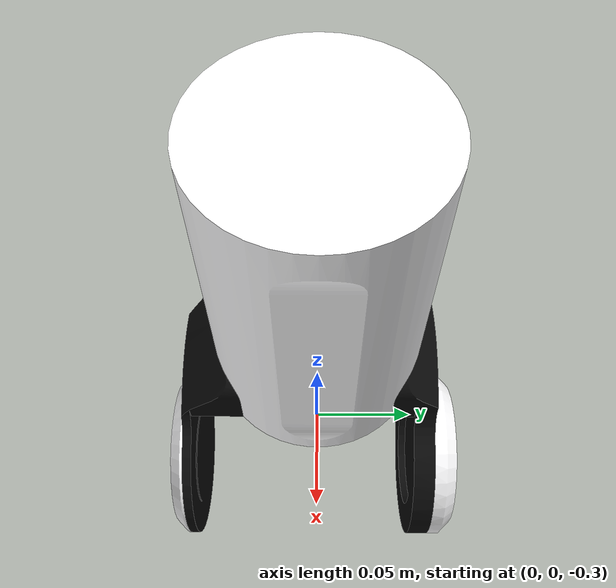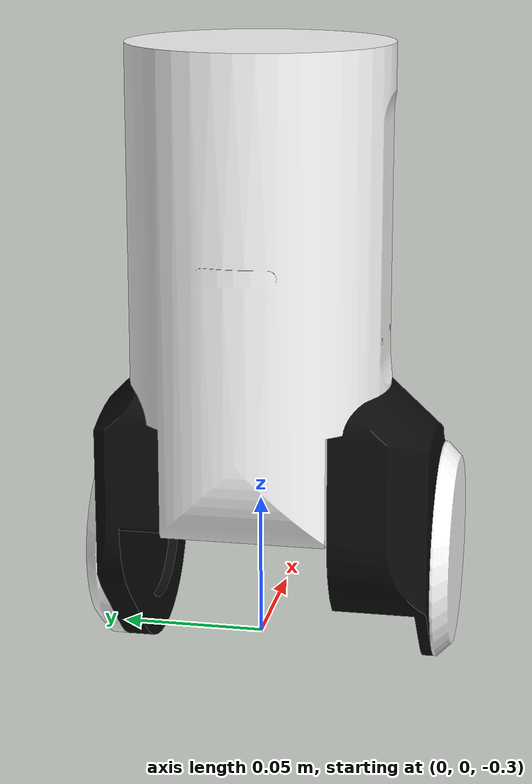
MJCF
<mujoco model="LINK_16">
  <default>
    <default class="visual">
      <geom group="2" type="mesh" contype="0" conaffinity="0"/>
    </default>
    <default class="collision">
      <geom group="3" type="mesh"/>
    </default>
  </default>
  <asset>
    <material name="10,10,10" specular="0.039216" shininess="1.0" rgba="0.039216 0.039216 0.039216 1.000000"/>
    <material name="254,254,255" specular="0.9973853333333333" shininess="1.0" rgba="0.996078 0.996078 1.000000 1.000000"/>
    <mesh file="LINK_16_0.obj"/>
    <mesh file="LINK_16_1.obj"/>
    <mesh file="LINK_16_collision_0.obj"/>
    <mesh file="LINK_16_collision_1.obj"/>
    <mesh file="LINK_16_collision_2.obj"/>
    <mesh file="LINK_16_collision_3.obj"/>
    <mesh file="LINK_16_collision_4.obj"/>
    <mesh file="LINK_16_collision_5.obj"/>
    <mesh file="LINK_16_collision_6.obj"/>
    <mesh file="LINK_16_collision_7.obj"/>
    <mesh file="LINK_16_collision_8.obj"/>
    <mesh file="LINK_16_collision_9.obj"/>
    <mesh file="LINK_16_collision_10.obj"/>
    <mesh file="LINK_16_collision_11.obj"/>
  </asset>
  <worldbody>
    <body name="LINK_16">
      <geom mesh="LINK_16_0" material="254,254,255" class="visual"/>
      <geom mesh="LINK_16_1" material="10,10,10" class="visual"/>
      <geom mesh="LINK_16_collision_0" rgba="0.4823724073368798 0.5022872456375693 0.46069492966261627 1" class="collision"/>
      <geom mesh="LINK_16_collision_1" rgba="0.010220428600252185 0.7006967622288988 0.7126434004492069 1" class="collision"/>
      <geom mesh="LINK_16_collision_2" rgba="0.010642875781216254 0.9898155668594812 0.8274250712242227 1" class="collision"/>
      <geom mesh="LINK_16_collision_3" rgba="0.976107034793406 0.17165513480212302 0.18039752609966897 1" class="collision"/>
      <geom mesh="LINK_16_collision_4" rgba="0.6302800116865647 0.8176078572321391 0.24508485519100964 1" class="collision"/>
      <geom mesh="LINK_16_collision_5" rgba="0.00020072595832421047 0.18359482219663215 0.8784688530056931 1" class="collision"/>
      <geom mesh="LINK_16_collision_6" rgba="0.4215172662563974 0.5171342002098795 0.9781532496574273 1" class="collision"/>
      <geom mesh="LINK_16_collision_7" rgba="0.5713962200269276 0.05746284489107889 0.2269080098704368 1" class="collision"/>
      <geom mesh="LINK_16_collision_8" rgba="0.23250558808429667 0.3299825543824415 0.799821397818602 1" class="collision"/>
      <geom mesh="LINK_16_collision_9" rgba="0.27569763432888494 0.27645903190753585 0.16905815258359258 1" class="collision"/>
      <geom mesh="LINK_16_collision_10" rgba="0.8848099006632817 0.5295559834036317 0.25923650928639785 1" class="collision"/>
      <geom mesh="LINK_16_collision_11" rgba="0.6916384739739914 0.07289875778844601 0.6943886213488413 1" class="collision"/>
    </body>
  </worldbody>
</mujoco>
